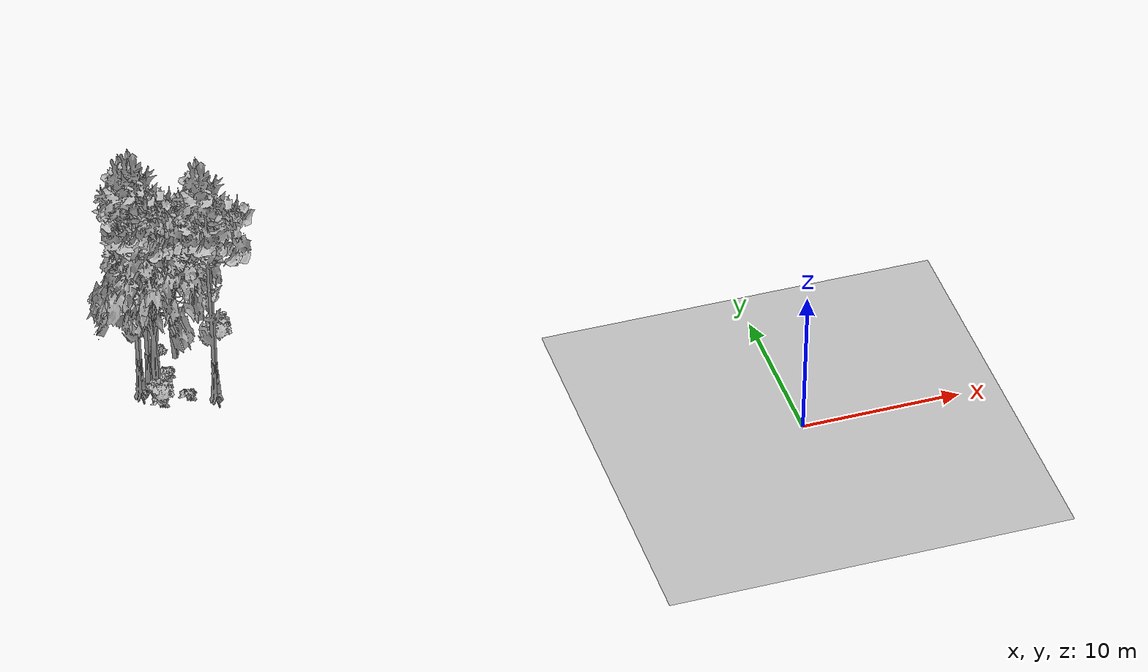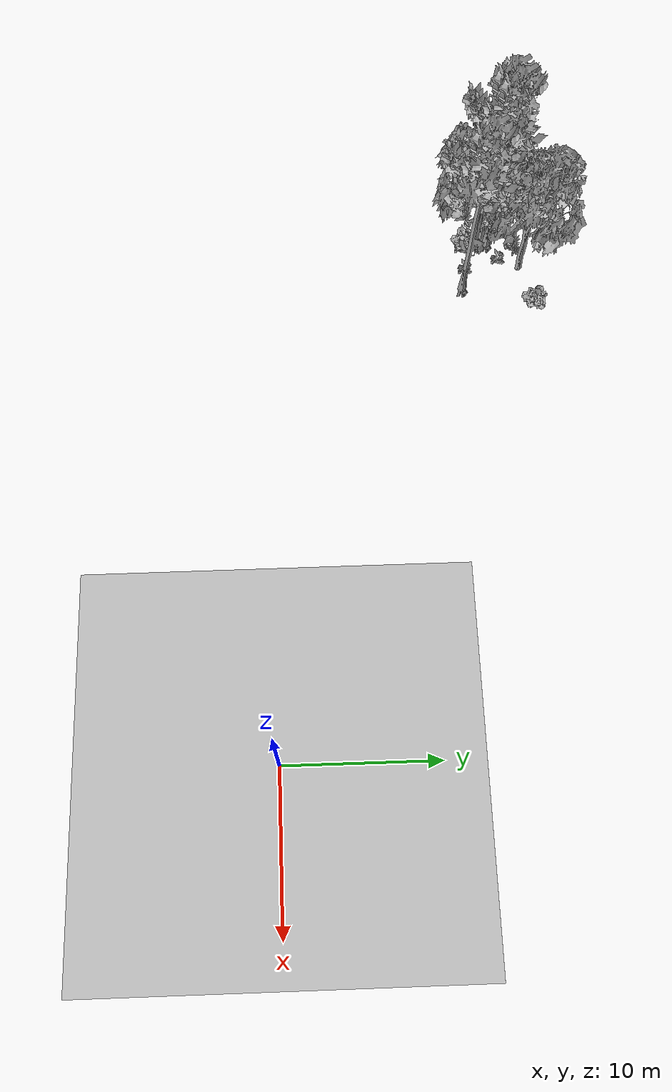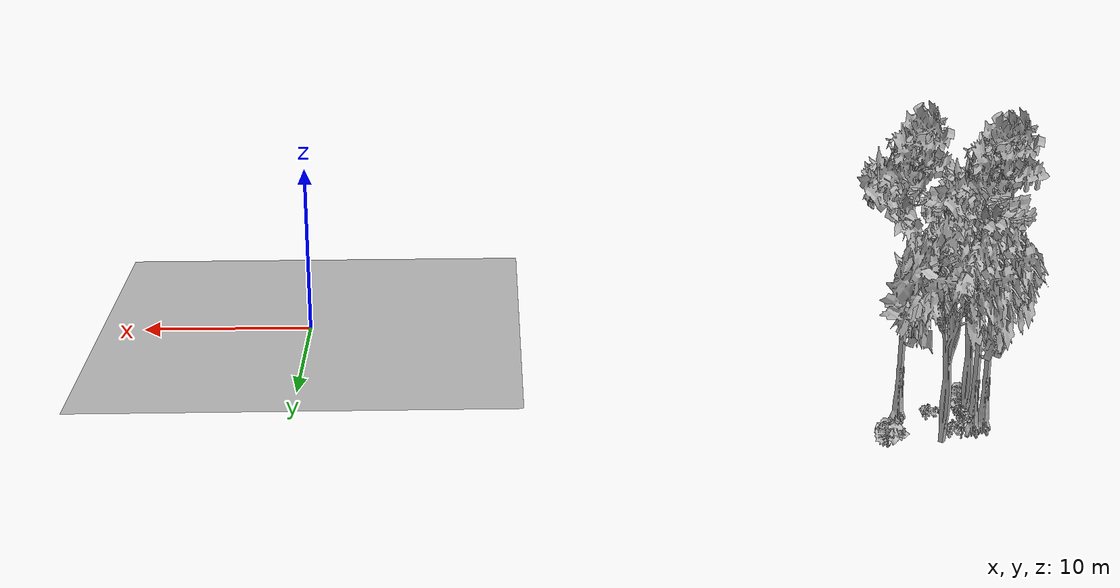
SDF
<sdf version="1.7">
 <world name="default">
  <model name="ground_plane">
   <static>1</static>
   <link name="link">
    <collision name="collision">
     <pose>-50 0 0 0 -0 0</pose>
     <geometry><plane><normal>0 0 1</normal><size>80 80</size></plane></geometry>
     <surface><contact><ode><min_depth>0.01</min_depth><max_vel>0</max_vel></ode></contact></surface>
    </collision>
    <visual name="grass">
     <cast_shadows>0</cast_shadows>
     <geometry>
      <mesh>
       <scale>0.46714285714285714 0.46714285714285714 0.1</scale>
       <uri>file://grass_plane/meshes/grass_plane.dae</uri>
      </mesh>
     </geometry>
    </visual>
   </link>
  </model>
  <model name="Tree 22">
   <static>1</static>
   <pose>-37.28646639435578 15.146930245264471 0 1.57079 -0 0</pose>
   <link name="link">
    <collision name="collision">
     <geometry><mesh><scale>3.5 5 3.5</scale><uri>model://tree_9/meshes/tree_9.obj</uri></mesh></geometry>
    </collision>
    <visual name="visual">
     <geometry><mesh><scale>3.5 5 3.5</scale><uri>model://tree_9/meshes/tree_9.obj</uri></mesh></geometry>
    </visual>
   </link>
  </model>
  <model name="Tree 30">
   <static>1</static>
   <pose>-34.59250229024043 17.583544439943438 0 1.57079 -0 0</pose>
   <link name="link">
    <collision name="collision">
     <geometry><mesh><scale>3.5 5 3.5</scale><uri>model://tree_2/meshes/tree_2.obj</uri></mesh></geometry>
    </collision>
    <visual name="visual">
     <geometry><mesh><scale>3.5 5 3.5</scale><uri>model://tree_2/meshes/tree_2.obj</uri></mesh></geometry>
    </visual>
   </link>
  </model>
  <model name="Tree 118">
   <static>1</static>
   <pose>-36.46230122341932 14.57305060193778 0 1.57079 -0 0</pose>
   <link name="link">
    <collision name="collision">
     <geometry><mesh><scale>3.5 5 3.5</scale><uri>model://tree_2/meshes/tree_2.obj</uri></mesh></geometry>
    </collision>
    <visual name="visual">
     <geometry><mesh><scale>3.5 5 3.5</scale><uri>model://tree_2/meshes/tree_2.obj</uri></mesh></geometry>
    </visual>
   </link>
  </model>
  <model name="Tree 500">
   <static>1</static>
   <pose>-36.63445669928117 15.485709575483888 0 1.57079 -0 0</pose>
   <link name="link">
    <collision name="collision">
     <geometry><mesh><scale>3.5 5 3.5</scale><uri>model://tree_9/meshes/tree_9.obj</uri></mesh></geometry>
    </collision>
    <visual name="visual">
     <geometry><mesh><scale>3.5 5 3.5</scale><uri>model://tree_9/meshes/tree_9.obj</uri></mesh></geometry>
    </visual>
   </link>
  </model>
  <model name="Tree 532">
   <static>1</static>
   <pose>-32.99760260537138 13.50193126143472 0 1.57079 -0 0</pose>
   <link name="link">
    <collision name="collision">
     <geometry><mesh><scale>3.5 5 3.5</scale><uri>model://tree_9/meshes/tree_9.obj</uri></mesh></geometry>
    </collision>
    <visual name="visual">
     <geometry><mesh><scale>3.5 5 3.5</scale><uri>model://tree_9/meshes/tree_9.obj</uri></mesh></geometry>
    </visual>
   </link>
  </model>
  <model name="Bush 63">
   <static>1</static>
   <pose>-31.52279316346714 18.305565533691002 0 1.57079 -0 0</pose>
   <link name="link">
    <collision name="collision">
     <geometry><mesh><scale>2 2 2</scale><uri>model://bush_1/meshes/bush_1.obj</uri></mesh></geometry>
     <surface><contact><collide_without_contact>false</collide_without_contact></contact></surface>
    </collision>
    <visual name="visual">
     <geometry><mesh><scale>2 2 2</scale><uri>model://bush_1/meshes/bush_1.obj</uri></mesh></geometry>
    </visual>
   </link>
  </model>
  <model name="Bush 89">
   <static>1</static>
   <pose>-35.588254069021225 17.315360244061218 0 1.57079 -0 0</pose>
   <link name="link">
    <collision name="collision">
     <geometry><mesh><scale>2 2 2</scale><uri>model://bush_5/meshes/bush_5.obj</uri></mesh></geometry>
     <surface><contact><collide_without_contact>false</collide_without_contact></contact></surface>
    </collision>
    <visual name="visual">
     <geometry><mesh><scale>2 2 2</scale><uri>model://bush_5/meshes/bush_5.obj</uri></mesh></geometry>
    </visual>
   </link>
  </model>
  <model name="Bush 210">
   <static>1</static>
   <pose>-36.31914607695846 13.675309831184883 0 1.57079 -0 0</pose>
   <link name="link">
    <collision name="collision">
     <geometry><mesh><scale>2 2 2</scale><uri>model://bush_1/meshes/bush_1.obj</uri></mesh></geometry>
     <surface><contact><collide_without_contact>false</collide_without_contact></contact></surface>
    </collision>
    <visual name="visual">
     <geometry><mesh><scale>2 2 2</scale><uri>model://bush_1/meshes/bush_1.obj</uri></mesh></geometry>
    </visual>
   </link>
  </model>
  <model name="Bush 254">
   <static>1</static>
   <pose>-35.40236297861307 16.203789171423594 0 1.57079 -0 0</pose>
   <link name="link">
    <collision name="collision">
     <geometry><mesh><scale>2 2 2</scale><uri>model://bush_2/meshes/bush_2.obj</uri></mesh></geometry>
     <surface><contact><collide_without_contact>false</collide_without_contact></contact></surface>
    </collision>
    <visual name="visual">
     <geometry><mesh><scale>2 2 2</scale><uri>model://bush_2/meshes/bush_2.obj</uri></mesh></geometry>
    </visual>
   </link>
  </model>
  <model name="Bush 260">
   <static>1</static>
   <pose>-36.43045039897059 13.678210640876927 0 1.57079 -0 0</pose>
   <link name="link">
    <collision name="collision">
     <geometry><mesh><scale>2 2 2</scale><uri>model://bush_2/meshes/bush_2.obj</uri></mesh></geometry>
     <surface><contact><collide_without_contact>false</collide_without_contact></contact></surface>
    </collision>
    <visual name="visual">
     <geometry><mesh><scale>2 2 2</scale><uri>model://bush_2/meshes/bush_2.obj</uri></mesh></geometry>
    </visual>
   </link>
  </model>
  <model name="Bush 587">
   <static>1</static>
   <pose>-34.68054541186711 13.798056317911772 0 1.57079 -0 0</pose>
   <link name="link">
    <collision name="collision">
     <geometry><mesh><scale>2 2 2</scale><uri>model://bush_2/meshes/bush_2.obj</uri></mesh></geometry>
     <surface><contact><collide_without_contact>false</collide_without_contact></contact></surface>
    </collision>
    <visual name="visual">
     <geometry><mesh><scale>2 2 2</scale><uri>model://bush_2/meshes/bush_2.obj</uri></mesh></geometry>
    </visual>
   </link>
  </model>
 </world>
</sdf>
